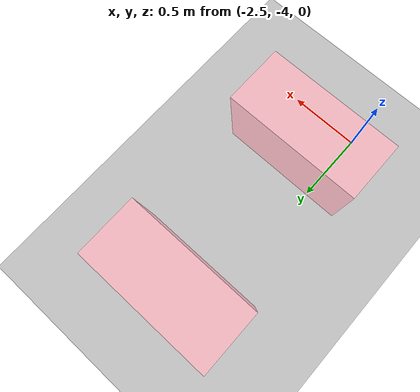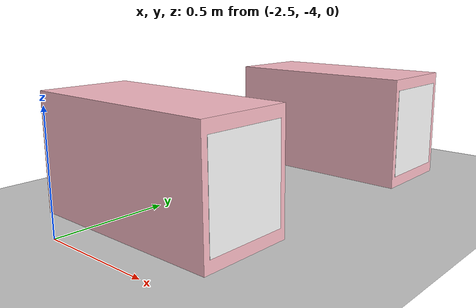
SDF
<sdf version="1.9">
 <world name="pig_pen_16units_world">
  <model name="ground_plane">
   <static>true</static>
   <link name="link">
    <collision name="collision">
     <geometry><plane><normal>0 0 1</normal><size>30 30</size></plane></geometry>
     <surface><friction><ode><mu>1.0</mu><mu2>1.0</mu2></ode></friction></surface>
    </collision>
    <visual name="visual">
     <geometry><plane><normal>0 0 1</normal><size>30 30</size></plane></geometry>
     <material>
      <ambient>0.8 0.8 0.8 1</ambient>
      <diffuse>0.8 0.8 0.8 1</diffuse>
      <specular>0.2 0.2 0.2 1</specular>
     </material>
    </visual>
   </link>
  </model>
  <include><uri>model://farm_pig</uri><name>pig3_b</name><pose>-2.275 -2.495 0.27 0 0 0</pose></include>
  <include><uri>model://farm_pig</uri><name>pig4_a</name><pose>-2.275 -3.685 0.27 0 0 0</pose></include>
 </world>
</sdf>
